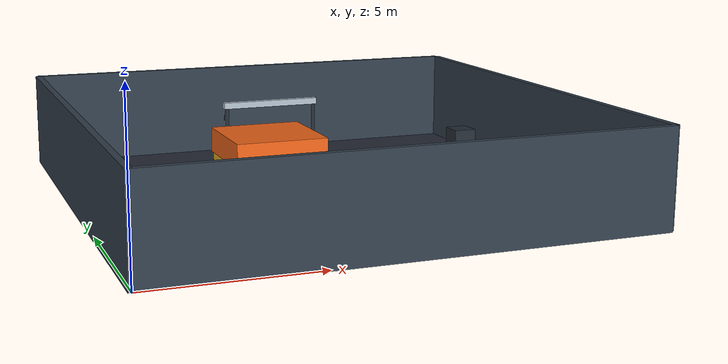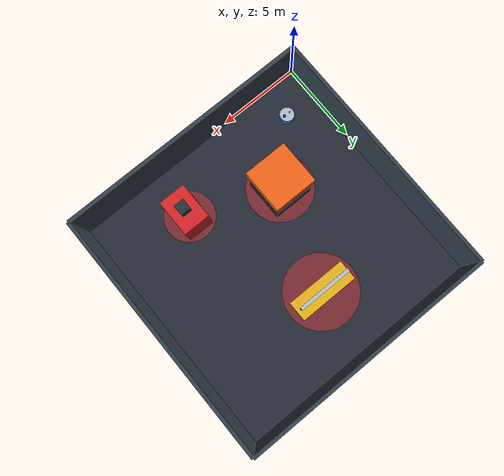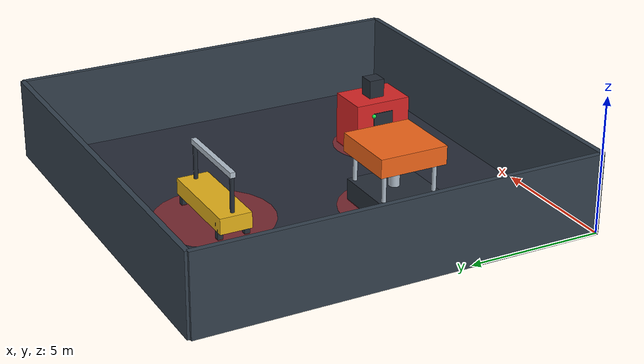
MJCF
<mujoco model="real_factory_floor">
  <compiler coordinate="local"/>
  <option gravity="0 0 -9.81" timestep="0.005"/>

  <asset>
    <!-- Textures and Materials -->
    <texture name="floor_grid" type="2d" builtin="checker" rgb1=".12 .14 .18" rgb2=".18 .20 .26" width="512" height="512"/>
    <material name="floor_mat" texture="floor_grid" texrepeat="2 2" texuniform="true"/>

    <material name="wall_mat" rgba="0.2 0.25 0.3 1.0"/>
    <material name="metal_dark" rgba="0.15 0.18 0.22 1.0" shininess="0.8"/>
    <material name="metal_bright" rgba="0.7 0.75 0.8 1.0" shininess="0.9"/>
    <material name="table_wood" rgba="0.45 0.28 0.15 1.0"/>
    <material name="press_orange" rgba="0.95 0.4 0.1 1.0" shininess="0.5"/>
    <material name="cabinet_red" rgba="0.85 0.15 0.15 1.0" shininess="0.4"/>
    <material name="conveyor_yellow" rgba="0.9 0.7 0.1 1.0"/>
    <material name="amr_body_mat" rgba="0.05 0.55 0.95 1.0" shininess="0.9"/>
    <material name="wheel_mat" rgba="0.05 0.05 0.05 1.0"/>
    <material name="sensor_mat" rgba="0.1 0.9 0.3 1.0" emission="0.6"/>
    <material name="warning_mat" rgba="1.0 0.2 0.2 0.4"/>
  </asset>

  <worldbody>
    <!-- Overhead Factory Lighting -->
    <light name="light1" pos="4 4 10" dir="0 0 -1" directional="true" diffuse=".8 .8 .8" specular=".3 .3 .3"/>
    <light name="light2" pos="11 11 10" dir="0 0 -1" directional="true" diffuse=".7 .7 .7" specular=".2 .2 .2"/>

    <!-- 15m x 15m Factory Floor Plane -->
    <geom name="floor" type="plane" size="7.5 7.5 0.1" pos="7.5 7.5 0" material="floor_mat"/>

    <!-- Factory Outer Boundary Walls -->
    <geom name="wall_south" type="box" size="7.5 0.1 1.5" pos="7.5 0 1.5" material="wall_mat"/>
    <geom name="wall_north" type="box" size="7.5 0.1 1.5" pos="7.5 15 1.5" material="wall_mat"/>
    <geom name="wall_west" type="box" size="0.1 7.5 1.5" pos="0 7.5 1.5" material="wall_mat"/>
    <geom name="wall_east" type="box" size="0.1 7.5 1.5" pos="15 7.5 1.5" material="wall_mat"/>

    <!-- DETAILED AMR-01 ROBOT BODY                                                -->
    <body name="amr" pos="2.0 2.0 0.3">
      <joint name="robot_x" type="slide" axis="1 0 0" damping="5.0"/>
      <joint name="robot_y" type="slide" axis="0 1 0" damping="5.0"/>
      <joint name="robot_z" type="slide" axis="0 0 1" damping="5.0"/>

      <!-- Main Chassis Base (Blue Cylinder Body) -->
      <geom name="amr_base" type="cylinder" size="0.45 0.15" pos="0 0 0" material="amr_body_mat" mass="15"/>
      <!-- Top Cover Plate -->
      <geom name="amr_top" type="cylinder" size="0.42 0.02" pos="0 0 0.16" material="metal_bright"/>
      <!-- Left/Right Drive Wheels -->
      <geom name="wheel_left" type="cylinder" size="0.1 0.04" pos="0 0.4 -0.08" euler="90 0 0" material="wheel_mat"/>
      <geom name="wheel_right" type="cylinder" size="0.1 0.04" pos="0 -0.4 -0.08" euler="90 0 0" material="wheel_mat"/>
      <!-- LiDAR Dome & Safety Beacon -->
      <geom name="lidar_tower" type="cylinder" size="0.08 0.08" pos="0.2 0 0.22" material="metal_dark"/>
      <geom name="safety_beacon" type="sphere" size="0.06" pos="-0.2 0 0.22" material="sensor_mat"/>
    </body>

    <!-- MACHINE STRUCTURE 1: Industrial Hydraulic Press Cell A (at 5, 5)          -->
    <body name="pressA" pos="5.0 5.0 0.0">
      <!-- Warning Zone Outer Base Circle -->
      <geom name="press_warning" type="cylinder" size="2.0 0.01" pos="0 0 0.01" material="warning_mat"/>
      <!-- Heavy Duty Workbench Base -->
      <geom name="press_table" type="box" size="1.2 1.2 0.4" pos="0 0 0.4" material="metal_dark"/>
      <!-- Hydraulic Pillars (4 Legs) -->
      <geom name="pillar1" type="cylinder" size="0.08 0.8" pos="1.0 1.0 1.2" material="metal_bright"/>
      <geom name="pillar2" type="cylinder" size="0.08 0.8" pos="-1.0 1.0 1.2" material="metal_bright"/>
      <geom name="pillar3" type="cylinder" size="0.08 0.8" pos="1.0 -1.0 1.2" material="metal_bright"/>
      <geom name="pillar4" type="cylinder" size="0.08 0.8" pos="-1.0 -1.0 1.2" material="metal_bright"/>
      <!-- Top Heavy Press Head Block -->
      <geom name="press_head" type="box" size="1.3 1.3 0.35" pos="0 0 2.2" material="press_orange"/>
      <!-- Robotic Arm Mount Base -->
      <geom name="arm_base" type="cylinder" size="0.2 0.3" pos="0 0 0.95" material="metal_bright"/>
    </body>

    <!-- MACHINE STRUCTURE 2: High Voltage Control Cabinet (at 10, 3)             -->
    <body name="cabinet" pos="10.0 3.0 0.0">
      <!-- Warning Zone Base -->
      <geom name="cabinet_warning" type="cylinder" size="1.5 0.01" pos="0 0 0.01" material="warning_mat"/>
      <!-- Main Electrical Switchgear Cabinet Structure -->
      <geom name="cab_body" type="box" size="0.8 1.1 1.0" pos="0 0 1.0" material="cabinet_red"/>
      <!-- Front Control Panels & Screens -->
      <geom name="cab_screen" type="box" size="0.02 0.4 0.3" pos="-0.81 0 1.3" material="metal_dark"/>
      <geom name="cab_hmi" type="sphere" size="0.08" pos="-0.81 0.4 1.5" material="sensor_mat"/>
      <!-- Top Cable Duct Column -->
      <geom name="cab_duct" type="box" size="0.3 0.3 0.5" pos="0 0 2.2" material="metal_dark"/>
    </body>

    <!-- MACHINE STRUCTURE 3: Automated Gantry Conveyor System (at 7, 11)           -->
    <body name="conveyor" pos="7.0 11.0 0.0">
      <!-- Warning Zone Base -->
      <geom name="conveyor_warning" type="cylinder" size="2.2 0.01" pos="0 0 0.01" material="warning_mat"/>
      <!-- Long Roller Table Deck -->
      <geom name="conv_table" type="box" size="1.8 0.6 0.3" pos="0 0 0.6" material="conveyor_yellow"/>
      <!-- Support Workbench Legs -->
      <geom name="leg1" type="box" size="0.1 0.1 0.3" pos="1.5 0.5 0.3" material="metal_dark"/>
      <geom name="leg2" type="box" size="0.1 0.1 0.3" pos="-1.5 0.5 0.3" material="metal_dark"/>
      <geom name="leg3" type="box" size="0.1 0.1 0.3" pos="1.5 -0.5 0.3" material="metal_dark"/>
      <geom name="leg4" type="box" size="0.1 0.1 0.3" pos="-1.5 -0.5 0.3" material="metal_dark"/>
      <!-- Overhead Gantry Arch Structural Frame -->
      <geom name="gantry_post1" type="cylinder" size="0.08 1.0" pos="1.5 0 1.3" material="metal_dark"/>
      <geom name="gantry_post2" type="cylinder" size="0.08 1.0" pos="-1.5 0 1.3" material="metal_dark"/>
      <geom name="gantry_beam" type="box" size="1.6 0.1 0.1" pos="0 0 2.3" material="metal_bright"/>
    </body>
  </worldbody>
</mujoco>
